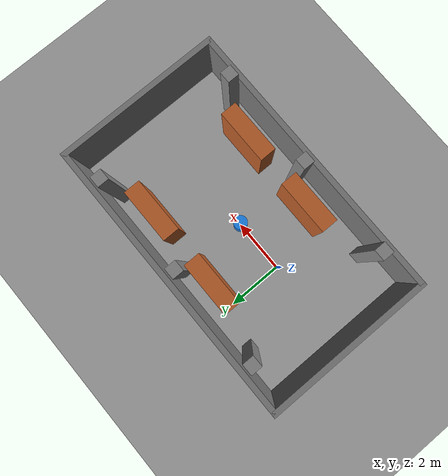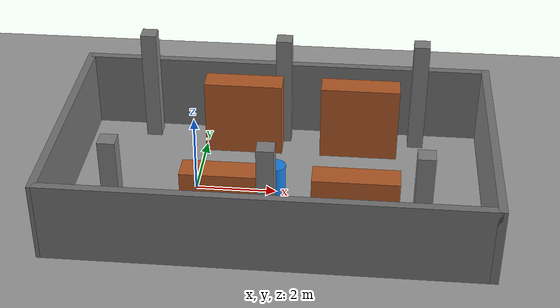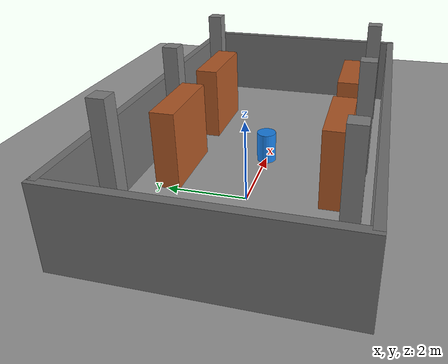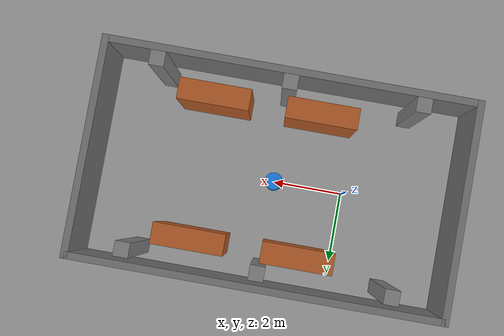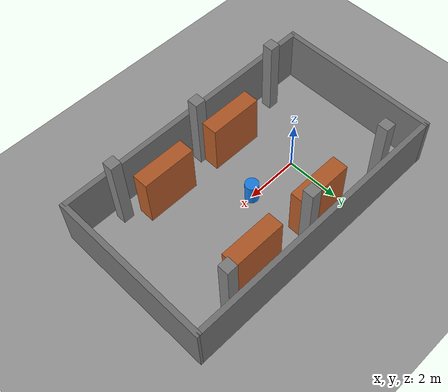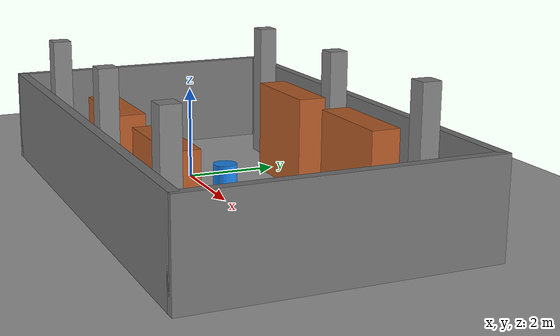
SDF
<?xml version="1.0"?>
<sdf version="1.9">
  <world name="industrial_world">
    <physics name="1ms" type="ignored">
      <max_step_size>0.001</max_step_size>
      <real_time_factor>1.0</real_time_factor>
    </physics>

    <plugin filename="gz-sim-physics-system" name="gz::sim::systems::Physics"></plugin>
    <plugin filename="gz-sim-user-commands-system" name="gz::sim::systems::UserCommands"></plugin>
    <plugin filename="gz-sim-scene-broadcaster-system" name="gz::sim::systems::SceneBroadcaster"></plugin>
    <plugin filename="gz-sim-sensors-system" name="gz::sim::systems::Sensors">
      <render_engine>ogre</render_engine>
    </plugin>
    <plugin filename="gz-sim-imu-system" name="gz::sim::systems::Imu"></plugin>

    <!-- Global illumination -->
    <light type="directional" name="sun">
      <cast_shadows>true</cast_shadows>
      <pose>0 0 15 0 0 0</pose>
      <diffuse>0.9 0.9 0.9 1</diffuse>
      <specular>0.2 0.2 0.2 1</specular>
      <direction>-0.5 0.2 -0.9</direction>
    </light>

    <!-- Floor / Ground Plane -->
    <model name="ground_plane">
      <static>true</static>
      <link name="link">
        <collision name="collision">
          <geometry><plane><normal>0 0 1</normal><size>60 60</size></plane></geometry>
        </collision>
        <visual name="visual">
          <geometry><plane><normal>0 0 1</normal><size>60 60</size></plane></geometry>
          <material>
            <ambient>0.6 0.6 0.6 1</ambient>
            <diffuse>0.6 0.6 0.6 1</diffuse>
          </material>
        </visual>
      </link>
    </model>

    <!-- ================= PERIMETER WAREHOUSE WALLS ================= -->
    <model name="wall_north">
      <static>true</static>
      <pose>2.0 3.0 1.0 0 0 0</pose>
      <link name="link">
        <collision name="collision">
          <geometry><box><size>10.4 0.2 2.0</size></box></geometry>
        </collision>
        <visual name="visual">
          <geometry><box><size>10.4 0.2 2.0</size></box></geometry>
          <material>
            <ambient>0.45 0.45 0.45 1</ambient>
            <diffuse>0.45 0.45 0.45 1</diffuse>
          </material>
        </visual>
      </link>
    </model>

    <model name="wall_south">
      <static>true</static>
      <pose>2.0 -3.0 1.0 0 0 0</pose>
      <link name="link">
        <collision name="collision">
          <geometry><box><size>10.4 0.2 2.0</size></box></geometry>
        </collision>
        <visual name="visual">
          <geometry><box><size>10.4 0.2 2.0</size></box></geometry>
          <material>
            <ambient>0.45 0.45 0.45 1</ambient>
            <diffuse>0.45 0.45 0.45 1</diffuse>
          </material>
        </visual>
      </link>
    </model>

    <model name="wall_west">
      <static>true</static>
      <pose>-3.2 0.0 1.0 0 0 0</pose>
      <link name="link">
        <collision name="collision">
          <geometry><box><size>0.2 6.2 2.0</size></box></geometry>
        </collision>
        <visual name="visual">
          <geometry><box><size>0.2 6.2 2.0</size></box></geometry>
          <material>
            <ambient>0.45 0.45 0.45 1</ambient>
            <diffuse>0.45 0.45 0.45 1</diffuse>
          </material>
        </visual>
      </link>
    </model>

    <model name="wall_east">
      <static>true</static>
      <pose>7.2 0.0 1.0 0 0 0</pose>
      <link name="link">
        <collision name="collision">
          <geometry><box><size>0.2 6.2 2.0</size></box></geometry>
        </collision>
        <visual name="visual">
          <geometry><box><size>0.2 6.2 2.0</size></box></geometry>
          <material>
            <ambient>0.45 0.45 0.45 1</ambient>
            <diffuse>0.45 0.45 0.45 1</diffuse>
          </material>
        </visual>
      </link>
    </model>

    <!-- ================= WAREHOUSE STORAGE SHELVES ================= -->
    <!-- Shelf Row 1 (North Side - Moved out to y = 2.0) -->
    <model name="shelf_north_1">
      <static>true</static>
      <pose>1.0 2.0 1.0 0 0 0</pose>
      <link name="link">
        <collision name="collision">
          <geometry><box><size>2.0 0.6 2.0</size></box></geometry>
        </collision>
        <visual name="visual">
          <geometry><box><size>2.0 0.6 2.0</size></box></geometry>
          <material>
            <ambient>0.6 0.3 0.1 1</ambient>
            <diffuse>0.7 0.35 0.15 1</diffuse>
          </material>
        </visual>
      </link>
    </model>

    <model name="shelf_north_2">
      <static>true</static>
      <pose>4.0 2.0 1.0 0 0 0</pose>
      <link name="link">
        <collision name="collision">
          <geometry><box><size>2.0 0.6 2.0</size></box></geometry>
        </collision>
        <visual name="visual">
          <geometry><box><size>2.0 0.6 2.0</size></box></geometry>
          <material>
            <ambient>0.6 0.3 0.1 1</ambient>
            <diffuse>0.7 0.35 0.15 1</diffuse>
          </material>
        </visual>
      </link>
    </model>

    <!-- Shelf Row 2 (South Side - Moved out to y = -2.0) -->
    <model name="shelf_south_1">
      <static>true</static>
      <pose>1.0 -2.0 1.0 0 0 0</pose>
      <link name="link">
        <collision name="collision">
          <geometry><box><size>2.0 0.6 2.0</size></box></geometry>
        </collision>
        <visual name="visual">
          <geometry><box><size>2.0 0.6 2.0</size></box></geometry>
          <material>
            <ambient>0.6 0.3 0.1 1</ambient>
            <diffuse>0.7 0.35 0.15 1</diffuse>
          </material>
        </visual>
      </link>
    </model>

    <model name="shelf_south_2">
      <static>true</static>
      <pose>4.0 -2.0 1.0 0 0 0</pose>
      <link name="link">
        <collision name="collision">
          <geometry><box><size>2.0 0.6 2.0</size></box></geometry>
        </collision>
        <visual name="visual">
          <geometry><box><size>2.0 0.6 2.0</size></box></geometry>
          <material>
            <ambient>0.6 0.3 0.1 1</ambient>
            <diffuse>0.7 0.35 0.15 1</diffuse>
          </material>
        </visual>
      </link>
    </model>

    <!-- ================= SINGLE CENTER OBSTACLES ================= -->
    <!-- A single blue warning barrel in the middle-left aisle -->
    <model name="industrial_barrel_blue_1">
      <static>true</static>
      <pose>2.0 0.0 0.4 0 0 0</pose>
      <link name="link">
        <collision name="collision">
          <geometry><cylinder><radius>0.25</radius><length>0.8</length></cylinder></geometry>
        </collision>
        <visual name="visual">
          <geometry><cylinder><radius>0.25</radius><length>0.8</length></cylinder></geometry>
          <material>
            <ambient>0.1 0.4 0.8 1</ambient>
            <diffuse>0.1 0.5 0.9 1</diffuse>
          </material>
        </visual>
      </link>
    </model>

    <!-- ================= CONCRETE COLUMNS (PILLARS) ================= -->
    <model name="pillar_north_1">
      <static>true</static>
      <pose>-1.5 2.5 1.5 0 0 0</pose>
      <link name="link">
        <collision name="collision">
          <geometry><box><size>0.4 0.4 3.0</size></box></geometry>
        </collision>
        <visual name="visual">
          <geometry><box><size>0.4 0.4 3.0</size></box></geometry>
          <material>
            <ambient>0.5 0.5 0.5 1</ambient>
            <diffuse>0.5 0.5 0.5 1</diffuse>
          </material>
        </visual>
      </link>
    </model>

    <model name="pillar_north_2">
      <static>true</static>
      <pose>2.0 2.5 1.5 0 0 0</pose>
      <link name="link">
        <collision name="collision">
          <geometry><box><size>0.4 0.4 3.0</size></box></geometry>
        </collision>
        <visual name="visual">
          <geometry><box><size>0.4 0.4 3.0</size></box></geometry>
          <material>
            <ambient>0.5 0.5 0.5 1</ambient>
            <diffuse>0.5 0.5 0.5 1</diffuse>
          </material>
        </visual>
      </link>
    </model>

    <model name="pillar_north_3">
      <static>true</static>
      <pose>5.5 2.5 1.5 0 0 0</pose>
      <link name="link">
        <collision name="collision">
          <geometry><box><size>0.4 0.4 3.0</size></box></geometry>
        </collision>
        <visual name="visual">
          <geometry><box><size>0.4 0.4 3.0</size></box></geometry>
          <material>
            <ambient>0.5 0.5 0.5 1</ambient>
            <diffuse>0.5 0.5 0.5 1</diffuse>
          </material>
        </visual>
      </link>
    </model>

    <model name="pillar_south_1">
      <static>true</static>
      <pose>-1.5 -2.5 1.5 0 0 0</pose>
      <link name="link">
        <collision name="collision">
          <geometry><box><size>0.4 0.4 3.0</size></box></geometry>
        </collision>
        <visual name="visual">
          <geometry><box><size>0.4 0.4 3.0</size></box></geometry>
          <material>
            <ambient>0.5 0.5 0.5 1</ambient>
            <diffuse>0.5 0.5 0.5 1</diffuse>
          </material>
        </visual>
      </link>
    </model>

    <model name="pillar_south_2">
      <static>true</static>
      <pose>2.0 -2.5 1.5 0 0 0</pose>
      <link name="link">
        <collision name="collision">
          <geometry><box><size>0.4 0.4 3.0</size></box></geometry>
        </collision>
        <visual name="visual">
          <geometry><box><size>0.4 0.4 3.0</size></box></geometry>
          <material>
            <ambient>0.5 0.5 0.5 1</ambient>
            <diffuse>0.5 0.5 0.5 1</diffuse>
          </material>
        </visual>
      </link>
    </model>

    <model name="pillar_south_3">
      <static>true</static>
      <pose>5.5 -2.5 1.5 0 0 0</pose>
      <link name="link">
        <collision name="collision">
          <geometry><box><size>0.4 0.4 3.0</size></box></geometry>
        </collision>
        <visual name="visual">
          <geometry><box><size>0.4 0.4 3.0</size></box></geometry>
          <material>
            <ambient>0.5 0.5 0.5 1</ambient>
            <diffuse>0.5 0.5 0.5 1</diffuse>
          </material>
        </visual>
      </link>
    </model>

  </world>
</sdf>
